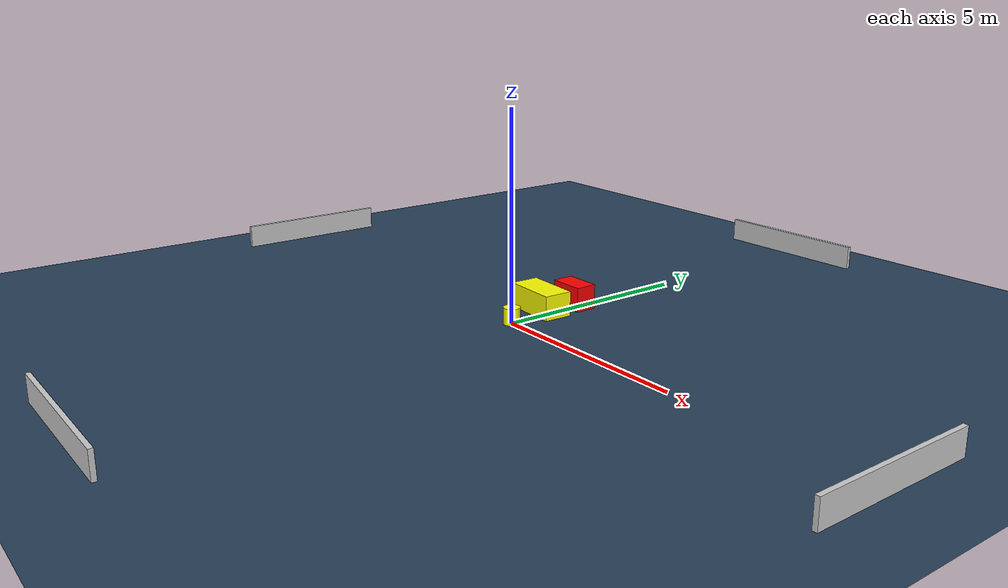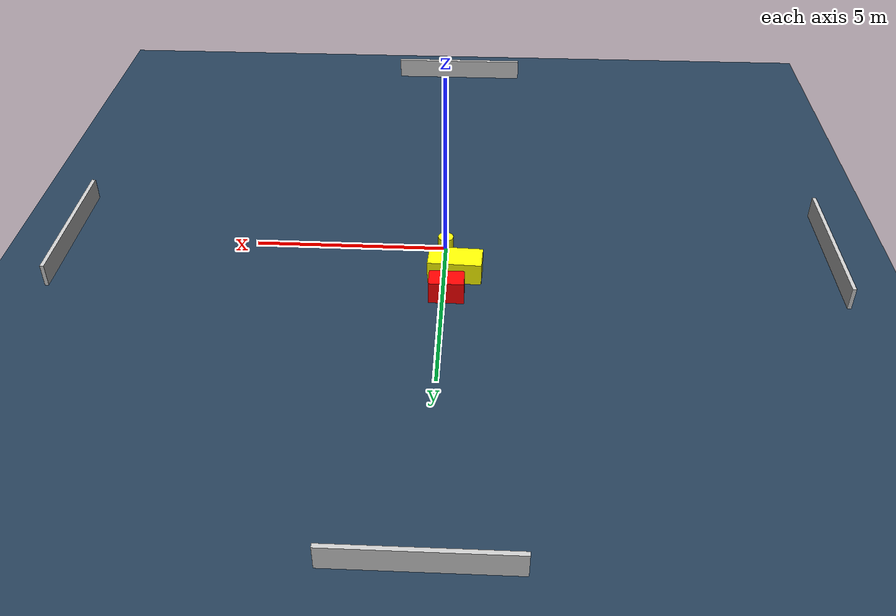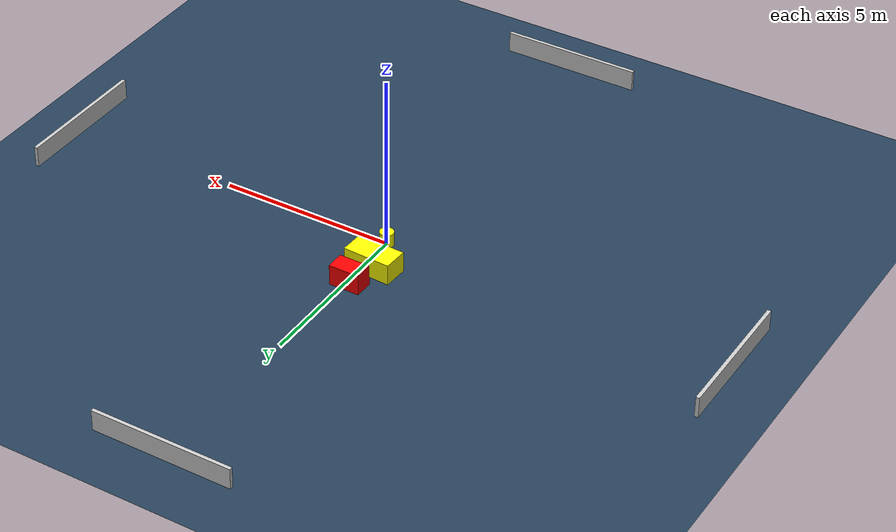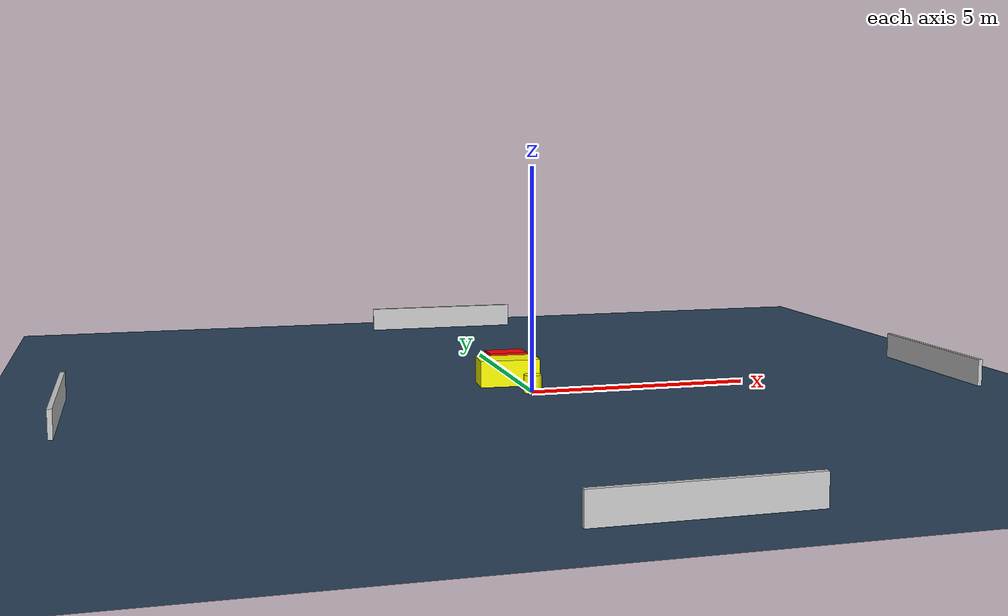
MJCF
<?xml version="1.0" ?>
<mujoco model="generated_environment">
  <option timestep="0.01" integrator="RK4" cone="elliptic"/>
  <default>
    <geom density="1"/>
  </default>
  <asset>
    <texture builtin="gradient" height="3072" name="skybox" rgb1="0.3 0.5 0.7" rgb2="0 0 0" type="skybox" width="512"/>
    <texture builtin="checker" height="300" name="groundplane" rgb1="0.2 0.3 0.4" rgb2="0.1 0.2 0.3" type="2d" width="300"/>
    <material name="groundplane" reflectance="0.2" texrepeat="5 5" texture="groundplane"/>
  </asset>
  <worldbody>
    <light dir="0 0 -1" directional="true" pos="0 0 1.5"/>
    <geom condim="3" friction="0.5 0.005 0.001" material="groundplane" name="floor" pos="0 0 0" size="0 0 0.05" type="plane"/>
    <body name="walls">
      <geom name="wall_1" condim="4" pos="-10.0 0.0 0.3" rgba="0.800000011920929 0.800000011920929 0.800000011920929 1.0" size="0.05 2.0 0.3" type="box"/>
      <geom name="wall_2" condim="4" pos="10.0 0.0 0.3" rgba="0.800000011920929 0.800000011920929 0.800000011920929 1.0" size="0.05 2.0 0.3" type="box"/>
      <geom name="wall_3" condim="4" pos="0.0 -10.0 0.3" rgba="0.800000011920929 0.800000011920929 0.800000011920929 1.0" size="2.0 0.05 0.3" type="box"/>
      <geom name="wall_4" condim="4" pos="0.0 10.0 0.3" rgba="0.800000011920929 0.800000011920929 0.800000011920929 1.0" size="2.0 0.05 0.3" type="box"/>
    </body>
    <body name="robot">
      <joint name="joint_x" type="slide" pos="0 0 0" axis="1 0 0"/>
      <joint name="joint_y" type="slide" pos="0 0 0" axis="0 1 0"/>
      <geom name="robot" type="cylinder" pos="0.0 0.0 0.2" size="0.2 0.2 0.0" mass="5.0" friction="1.0 0.005 0.0001" condim="4" rgba="1.0 1.0 0.0 1.0"/>
    </body>
    <body name="obstacle_1_movable">
      <geom name="obstacle_1_movable" condim="4" pos="-0.29237766840736806 1.1030371236104635 0.3" euler="0 0 177.32163414769192" friction="0.0 0.005 0.001" rgba="1.0 1.0 0.0 1.0" size="0.6824134920875191 0.35496038993773915 0.3" type="box" mass="0.1"/>
      <joint type="free"/>
    </body>
    <body name="obstacle_2_static">
      <geom name="obstacle_2_static" condim="4" pos="-0.10760982868066823 1.9878516085081037 0.3" euler="0 0 359.97586681139717" friction="0.0 0.005 0.001" rgba="1.0 0.0 0.0 1.0" size="0.44019898039927574 0.265360638870071 0.3" type="box"/>
    </body>
  </worldbody>
  <actuator>
    <motor name="actuator_x" joint="joint_x" gear="1" ctrlrange="-1 1"/>
    <motor name="actuator_y" joint="joint_y" gear="1" ctrlrange="-1 1"/>
  </actuator>
</mujoco>
